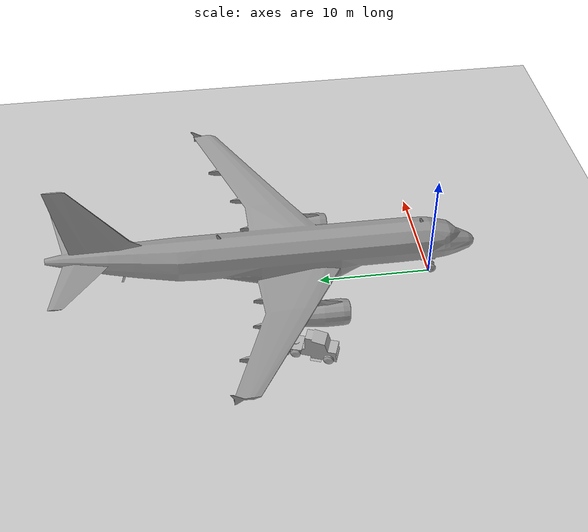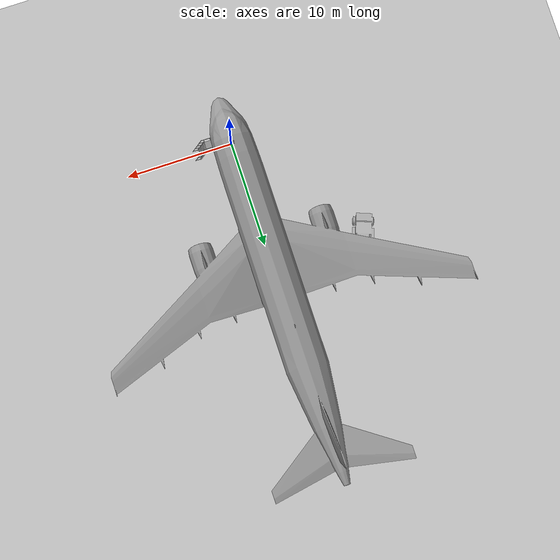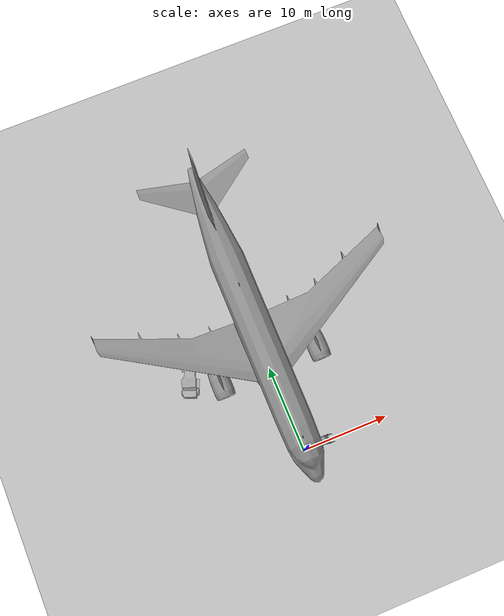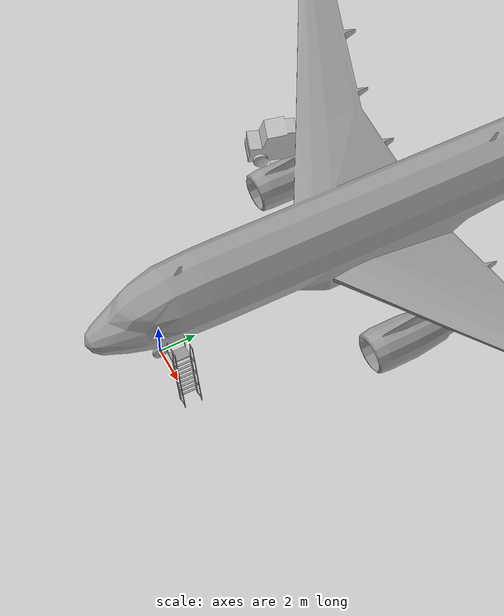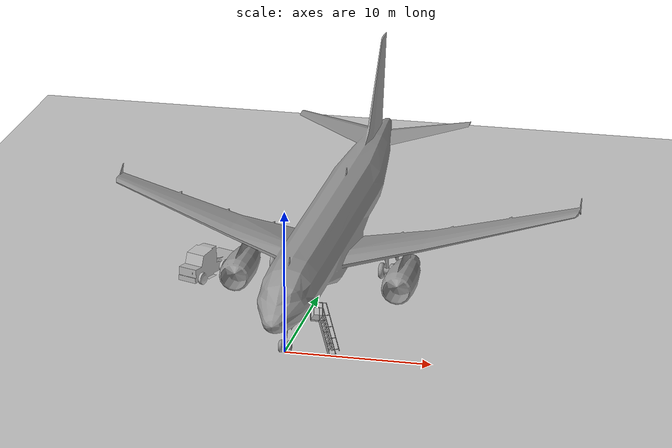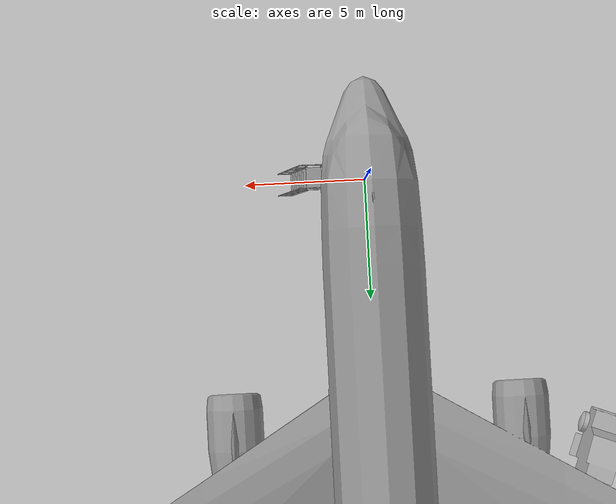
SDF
<sdf version="1.6">
 <world name="default">
  <light name="sun" type="directional">
   <pose>0 0 10 0 -0 0</pose>
   <diffuse>0.8 0.8 0.8 1</diffuse>
   <specular>0.1 0.1 0.1 1</specular>
   <attenuation>
    <range>1000</range>
    <constant>0.9</constant>
    <linear>0.01</linear>
    <quadratic>0.001</quadratic>
   </attenuation>
   <direction>-0.5 0.5 -1</direction>
  </light>
  <model name="ground_plane">
   <static>1</static>
   <link name="link">
    <collision name="collision">
     <geometry><plane><normal>0 0 1</normal><size>100 100</size></plane></geometry>
     <surface><friction><ode><mu>100</mu><mu2>50</mu2></ode></friction></surface>
    </collision>
    <visual name="visual">
     <cast_shadows>0</cast_shadows>
     <geometry><plane><normal>0 0 1</normal><size>100 100</size></plane></geometry>
     <material>
      <script><uri>file://media/materials/scripts/gazebo.material</uri><name>Gazebo/Grey</name></script>
     </material>
    </visual>
   </link>
  </model>
  <gravity>0 0 -9.8</gravity>
  <magnetic_field>6e-06 2.3e-05 -4.2e-05</magnetic_field>
  <atmosphere type="adiabatic"/>
  <physics name="default_physics" default="0" type="ode">
   <max_step_size>0.001</max_step_size>
   <real_time_factor>1</real_time_factor>
   <real_time_update_rate>1000</real_time_update_rate>
  </physics>
  <scene><ambient>0.4 0.4 0.4 1</ambient><background>0.7 0.7 0.7 1</background><shadows>1</shadows></scene>
  <spherical_coordinates>
   <surface_model>EARTH_WGS84</surface_model>
   <latitude_deg>0</latitude_deg>
   <longitude_deg>0</longitude_deg>
   <elevation>0</elevation>
   <heading_deg>0</heading_deg>
  </spherical_coordinates>
  <model name="a320_collapsed">
   <link name="link_3">
    <pose>-4.6e-05 -1e-06 0 0 -0 0</pose>
    <inertial>
     <mass>1</mass>
     <inertia>
      <ixx>0.166667</ixx>
      <ixy>0</ixy>
      <ixz>0</ixz>
      <iyy>0.166667</iyy>
      <iyz>0</iyz>
      <izz>0.166667</izz>
     </inertia>
    </inertial>
    <visual name="visual">
     <geometry><mesh><uri>model://a320_collapsed/a320_collapse.stl</uri><scale>1 1 1</scale></mesh></geometry>
     <material>
      <lighting>1</lighting>
      <script><uri>file://media/materials/scripts/gazebo.material</uri><name>Gazebo/Grey</name></script>
      <ambient>0.3 0.3 0.3 1</ambient>
      <diffuse>0.7 0.7 0.7 1</diffuse>
      <specular>0.01 0.01 0.01 1</specular>
      <emissive>0 0 0 1</emissive>
     </material>
    </visual>
    <collision name="collision">
     <geometry><mesh><uri>model://a320_collapsed/a320_collapse.stl</uri><scale>1 1 1</scale></mesh></geometry>
     <surface>
      <friction>
       <ode><mu>1</mu><mu2>1</mu2><fdir1>0 0 0</fdir1><slip1>0</slip1><slip2>0</slip2></ode>
       <torsional>
        <coefficient>1</coefficient>
        <patch_radius>0</patch_radius>
        <surface_radius>0</surface_radius>
        <use_patch_radius>1</use_patch_radius>
        <ode><slip>0</slip></ode>
       </torsional>
      </friction>
      <bounce><restitution_coefficient>0</restitution_coefficient><threshold>1e+06</threshold></bounce>
      <contact>
       <collide_without_contact>0</collide_without_contact>
       <collide_without_contact_bitmask>1</collide_without_contact_bitmask>
       <collide_bitmask>1</collide_bitmask>
       <ode>
        <soft_cfm>0</soft_cfm>
        <soft_erp>0.2</soft_erp>
        <kp>1e+13</kp>
        <kd>1</kd>
        <max_vel>0.01</max_vel>
        <min_depth>0</min_depth>
       </ode>
       <bullet>
        <split_impulse>1</split_impulse>
        <split_impulse_penetration_threshold>-0.01</split_impulse_penetration_threshold>
        <soft_cfm>0</soft_cfm>
        <soft_erp>0.2</soft_erp>
        <kp>1e+13</kp>
        <kd>1</kd>
       </bullet>
      </contact>
     </surface>
    </collision>
   </link>
   <static>1</static>
   <pose>4.6e-05 1e-06 0 0 -0 0</pose>
  </model>
  <model name="ladder_75deg_2rails">
   <static>1</static>
   <link name="step0">
    <pose>0 0.071453 0.266667 0 -0 0</pose>
    <inertial>
     <mass>9.75482</mass>
     <inertia>
      <ixx>0.00957124</ixx>
      <iyy>0.65963</iyy>
      <izz>0.666842</izz>
      <ixy>0</ixy>
      <ixz>0</ixz>
      <iyz>0</iyz>
     </inertia>
    </inertial>
    <collision name="collision"><geometry><box><size>0.9 0.1016 0.0381</size></box></geometry></collision>
    <visual name="visual">
     <geometry><box><size>0.9 0.1016 0.0381</size></box></geometry>
     <material>
      <script><uri>file://media/materials/scripts/gazebo.material</uri><name>Gazebo/Grey</name></script>
     </material>
    </visual>
   </link>
   <link name="step1">
    <pose>0 0.142906 0.533333 0 -0 0</pose>
    <inertial>
     <mass>9.75482</mass>
     <inertia>
      <ixx>0.00957124</ixx>
      <iyy>0.65963</iyy>
      <izz>0.666842</izz>
      <ixy>0</ixy>
      <ixz>0</ixz>
      <iyz>0</iyz>
     </inertia>
    </inertial>
    <collision name="collision"><geometry><box><size>0.9 0.1016 0.0381</size></box></geometry></collision>
    <visual name="visual">
     <geometry><box><size>0.9 0.1016 0.0381</size></box></geometry>
     <material>
      <script><uri>file://media/materials/scripts/gazebo.material</uri><name>Gazebo/Grey</name></script>
     </material>
    </visual>
   </link>
   <link name="step2">
    <pose>0 0.214359 0.8 0 -0 0</pose>
    <inertial>
     <mass>9.75482</mass>
     <inertia>
      <ixx>0.00957124</ixx>
      <iyy>0.65963</iyy>
      <izz>0.666842</izz>
      <ixy>0</ixy>
      <ixz>0</ixz>
      <iyz>0</iyz>
     </inertia>
    </inertial>
    <collision name="collision"><geometry><box><size>0.9 0.1016 0.0381</size></box></geometry></collision>
    <visual name="visual">
     <geometry><box><size>0.9 0.1016 0.0381</size></box></geometry>
     <material>
      <script><uri>file://media/materials/scripts/gazebo.material</uri><name>Gazebo/Grey</name></script>
     </material>
    </visual>
   </link>
   <link name="step3">
    <pose>0 0.285812 1.06667 0 -0 0</pose>
    <inertial>
     <mass>9.75482</mass>
     <inertia>
      <ixx>0.00957124</ixx>
      <iyy>0.65963</iyy>
      <izz>0.666842</izz>
      <ixy>0</ixy>
      <ixz>0</ixz>
      <iyz>0</iyz>
     </inertia>
    </inertial>
    <collision name="collision"><geometry><box><size>0.9 0.1016 0.0381</size></box></geometry></collision>
    <visual name="visual">
     <geometry><box><size>0.9 0.1016 0.0381</size></box></geometry>
     <material>
      <script><uri>file://media/materials/scripts/gazebo.material</uri><name>Gazebo/Grey</name></script>
     </material>
    </visual>
   </link>
   <link name="step4">
    <pose>0 0.357266 1.33333 0 -0 0</pose>
    <inertial>
     <mass>9.75482</mass>
     <inertia>
      <ixx>0.00957124</ixx>
      <iyy>0.65963</iyy>
      <izz>0.666842</izz>
      <ixy>0</ixy>
      <ixz>0</ixz>
      <iyz>0</iyz>
     </inertia>
    </inertial>
    <collision name="collision"><geometry><box><size>0.9 0.1016 0.0381</size></box></geometry></collision>
    <visual name="visual">
     <geometry><box><size>0.9 0.1016 0.0381</size></box></geometry>
     <material>
      <script><uri>file://media/materials/scripts/gazebo.material</uri><name>Gazebo/Grey</name></script>
     </material>
    </visual>
   </link>
   <link name="step5">
    <pose>0 0.428719 1.6 0 -0 0</pose>
    <inertial>
     <mass>9.75482</mass>
     <inertia>
      <ixx>0.00957124</ixx>
      <iyy>0.65963</iyy>
      <izz>0.666842</izz>
      <ixy>0</ixy>
      <ixz>0</ixz>
      <iyz>0</iyz>
     </inertia>
    </inertial>
    <collision name="collision"><geometry><box><size>0.9 0.1016 0.0381</size></box></geometry></collision>
    <visual name="visual">
     <geometry><box><size>0.9 0.1016 0.0381</size></box></geometry>
     <material>
      <script><uri>file://media/materials/scripts/gazebo.material</uri><name>Gazebo/Grey</name></script>
     </material>
    </visual>
   </link>
   <link name="step6">
    <pose>0 0.500172 1.86667 0 -0 0</pose>
    <inertial>
     <mass>9.75482</mass>
     <inertia>
      <ixx>0.00957124</ixx>
      <iyy>0.65963</iyy>
      <izz>0.666842</izz>
      <ixy>0</ixy>
      <ixz>0</ixz>
      <iyz>0</iyz>
     </inertia>
    </inertial>
    <collision name="collision"><geometry><box><size>0.9 0.1016 0.0381</size></box></geometry></collision>
    <visual name="visual">
     <geometry><box><size>0.9 0.1016 0.0381</size></box></geometry>
     <material>
      <script><uri>file://media/materials/scripts/gazebo.material</uri><name>Gazebo/Grey</name></script>
     </material>
    </visual>
   </link>
   <link name="step7">
    <pose>0 0.571625 2.13333 0 -0 0</pose>
    <inertial>
     <mass>9.75482</mass>
     <inertia>
      <ixx>0.00957124</ixx>
      <iyy>0.65963</iyy>
      <izz>0.666842</izz>
      <ixy>0</ixy>
      <ixz>0</ixz>
      <iyz>0</iyz>
     </inertia>
    </inertial>
    <collision name="collision"><geometry><box><size>0.9 0.1016 0.0381</size></box></geometry></collision>
    <visual name="visual">
     <geometry><box><size>0.9 0.1016 0.0381</size></box></geometry>
     <material>
      <script><uri>file://media/materials/scripts/gazebo.material</uri><name>Gazebo/Grey</name></script>
     </material>
    </visual>
   </link>
   <link name="landing">
    <pose>0 0.943078 2.4 0 -0 0</pose>
    <inertial>
     <mass>57.6072</mass>
     <inertia><ixx>1.73518</ixx><iyy>3.89545</iyy><izz>5.6167</izz><ixy>0</ixy><ixz>0</ixz><iyz>0</iyz></inertia>
    </inertial>
    <collision name="collision"><geometry><box><size>0.9 0.6 0.1016</size></box></geometry></collision>
    <visual name="visual">
     <geometry><box><size>0.9 0.6 0.1016</size></box></geometry>
     <material>
      <script><uri>file://media/materials/scripts/gazebo.material</uri><name>Gazebo/Grey</name></script>
     </material>
    </visual>
   </link>
   <link name="left_side_wall">
    <pose>-0.45 0.321539 1.2 1.309 -0 0</pose>
    <collision name="collision"><geometry><box><size>0.0508 2.56466 0.13</size></box></geometry></collision>
    <visual name="visual">
     <geometry><box><size>0.0508 2.56466 0.13</size></box></geometry>
     <material>
      <script><uri>file://media/materials/scripts/gazebo.material</uri><name>Gazebo/Grey</name></script>
     </material>
    </visual>
   </link>
   <link name="right_side_wall">
    <pose>0.45 0.321539 1.2 1.309 -0 0</pose>
    <collision name="collision"><geometry><box><size>0.0508 2.56466 0.13</size></box></geometry></collision>
    <visual name="visual">
     <geometry><box><size>0.0508 2.56466 0.13</size></box></geometry>
     <material>
      <script><uri>file://media/materials/scripts/gazebo.material</uri><name>Gazebo/Grey</name></script>
     </material>
    </visual>
   </link>
   <link name="left_railing_long">
    <pose>-0.45 -0.053461 1.66651 -0.261799 0 0</pose>
    <collision name="collision">
     <geometry><cylinder><radius>0.02413</radius><length>3.51529</length></cylinder></geometry>
    </collision>
    <visual name="visual">
     <geometry><cylinder><radius>0.02413</radius><length>3.51529</length></cylinder></geometry>
     <material>
      <script><uri>file://media/materials/scripts/gazebo.material</uri><name>Gazebo/Grey</name></script>
     </material>
    </visual>
   </link>
   <link name="left_railing_upright0">
    <pose>-0.45 -0.210089 0.056293 1.309 -0 0</pose>
    <collision name="collision">
     <geometry><cylinder><radius>0.02413</radius><length>0.482963</length></cylinder></geometry>
    </collision>
    <visual name="visual">
     <geometry><cylinder><radius>0.02413</radius><length>0.482963</length></cylinder></geometry>
     <material>
      <script><uri>file://media/materials/scripts/gazebo.material</uri><name>Gazebo/Grey</name></script>
     </material>
    </visual>
   </link>
   <link name="left_railing_upright1">
    <pose>-0.45 0.00427 0.856293 1.309 -0 0</pose>
    <collision name="collision">
     <geometry><cylinder><radius>0.02413</radius><length>0.482963</length></cylinder></geometry>
    </collision>
    <visual name="visual">
     <geometry><cylinder><radius>0.02413</radius><length>0.482963</length></cylinder></geometry>
     <material>
      <script><uri>file://media/materials/scripts/gazebo.material</uri><name>Gazebo/Grey</name></script>
     </material>
    </visual>
   </link>
   <link name="left_railing_upright2">
    <pose>-0.45 0.21863 1.65629 1.309 -0 0</pose>
    <collision name="collision">
     <geometry><cylinder><radius>0.02413</radius><length>0.482963</length></cylinder></geometry>
    </collision>
    <visual name="visual">
     <geometry><cylinder><radius>0.02413</radius><length>0.482963</length></cylinder></geometry>
     <material>
      <script><uri>file://media/materials/scripts/gazebo.material</uri><name>Gazebo/Grey</name></script>
     </material>
    </visual>
   </link>
   <link name="left_railing_upright3">
    <pose>-0.45 0.432989 2.45629 1.309 -0 0</pose>
    <collision name="collision">
     <geometry><cylinder><radius>0.02413</radius><length>0.482963</length></cylinder></geometry>
    </collision>
    <visual name="visual">
     <geometry><cylinder><radius>0.02413</radius><length>0.482963</length></cylinder></geometry>
     <material>
      <script><uri>file://media/materials/scripts/gazebo.material</uri><name>Gazebo/Grey</name></script>
     </material>
    </visual>
   </link>
   <link name="left_railing_landing_top">
    <pose>-0.45 0.818078 3.35714 1.5708 -0 0</pose>
    <collision name="collision">
     <geometry><cylinder><radius>0.02413</radius><length>0.87413</length></cylinder></geometry>
    </collision>
    <visual name="visual">
     <geometry><cylinder><radius>0.02413</radius><length>0.87413</length></cylinder></geometry>
     <material>
      <script><uri>file://media/materials/scripts/gazebo.material</uri><name>Gazebo/Grey</name></script>
     </material>
    </visual>
   </link>
   <link name="left_railing_landing_upright_0">
    <pose>-0.45 0.643078 2.86651 0 -0 0</pose>
    <collision name="collision">
     <geometry><cylinder><radius>0.02413</radius><length>0.933013</length></cylinder></geometry>
    </collision>
    <visual name="visual">
     <geometry><cylinder><radius>0.02413</radius><length>0.933013</length></cylinder></geometry>
     <material>
      <script><uri>file://media/materials/scripts/gazebo.material</uri><name>Gazebo/Grey</name></script>
     </material>
    </visual>
   </link>
   <link name="left_railing_landing_upright_1">
    <pose>-0.45 1.24308 2.86651 0 -0 0</pose>
    <collision name="collision">
     <geometry><cylinder><radius>0.02413</radius><length>0.933013</length></cylinder></geometry>
    </collision>
    <visual name="visual">
     <geometry><cylinder><radius>0.02413</radius><length>0.933013</length></cylinder></geometry>
     <material>
      <script><uri>file://media/materials/scripts/gazebo.material</uri><name>Gazebo/Grey</name></script>
     </material>
    </visual>
   </link>
   <link name="right_railing_long">
    <pose>0.45 -0.053461 1.66651 -0.261799 0 0</pose>
    <collision name="collision">
     <geometry><cylinder><radius>0.02413</radius><length>3.51529</length></cylinder></geometry>
    </collision>
    <visual name="visual">
     <geometry><cylinder><radius>0.02413</radius><length>3.51529</length></cylinder></geometry>
     <material>
      <script><uri>file://media/materials/scripts/gazebo.material</uri><name>Gazebo/Grey</name></script>
     </material>
    </visual>
   </link>
   <link name="right_railing_upright0">
    <pose>0.45 -0.210089 0.056293 1.309 -0 0</pose>
    <collision name="collision">
     <geometry><cylinder><radius>0.02413</radius><length>0.482963</length></cylinder></geometry>
    </collision>
    <visual name="visual">
     <geometry><cylinder><radius>0.02413</radius><length>0.482963</length></cylinder></geometry>
     <material>
      <script><uri>file://media/materials/scripts/gazebo.material</uri><name>Gazebo/Grey</name></script>
     </material>
    </visual>
   </link>
   <link name="right_railing_upright1">
    <pose>0.45 0.00427 0.856293 1.309 -0 0</pose>
    <collision name="collision">
     <geometry><cylinder><radius>0.02413</radius><length>0.482963</length></cylinder></geometry>
    </collision>
    <visual name="visual">
     <geometry><cylinder><radius>0.02413</radius><length>0.482963</length></cylinder></geometry>
     <material>
      <script><uri>file://media/materials/scripts/gazebo.material</uri><name>Gazebo/Grey</name></script>
     </material>
    </visual>
   </link>
   <link name="right_railing_upright2">
    <pose>0.45 0.21863 1.65629 1.309 -0 0</pose>
    <collision name="collision">
     <geometry><cylinder><radius>0.02413</radius><length>0.482963</length></cylinder></geometry>
    </collision>
    <visual name="visual">
     <geometry><cylinder><radius>0.02413</radius><length>0.482963</length></cylinder></geometry>
     <material>
      <script><uri>file://media/materials/scripts/gazebo.material</uri><name>Gazebo/Grey</name></script>
     </material>
    </visual>
   </link>
   <link name="right_railing_upright3">
    <pose>0.45 0.432989 2.45629 1.309 -0 0</pose>
    <collision name="collision">
     <geometry><cylinder><radius>0.02413</radius><length>0.482963</length></cylinder></geometry>
    </collision>
    <visual name="visual">
     <geometry><cylinder><radius>0.02413</radius><length>0.482963</length></cylinder></geometry>
     <material>
      <script><uri>file://media/materials/scripts/gazebo.material</uri><name>Gazebo/Grey</name></script>
     </material>
    </visual>
   </link>
   <link name="right_railing_landing_top">
    <pose>0.45 0.818078 3.35714 1.5708 -0 0</pose>
    <collision name="collision">
     <geometry><cylinder><radius>0.02413</radius><length>0.87413</length></cylinder></geometry>
    </collision>
    <visual name="visual">
     <geometry><cylinder><radius>0.02413</radius><length>0.87413</length></cylinder></geometry>
     <material>
      <script><uri>file://media/materials/scripts/gazebo.material</uri><name>Gazebo/Grey</name></script>
     </material>
    </visual>
   </link>
   <link name="right_railing_landing_upright_0">
    <pose>0.45 0.643078 2.86651 0 -0 0</pose>
    <collision name="collision">
     <geometry><cylinder><radius>0.02413</radius><length>0.933013</length></cylinder></geometry>
    </collision>
    <visual name="visual">
     <geometry><cylinder><radius>0.02413</radius><length>0.933013</length></cylinder></geometry>
     <material>
      <script><uri>file://media/materials/scripts/gazebo.material</uri><name>Gazebo/Grey</name></script>
     </material>
    </visual>
   </link>
   <link name="right_railing_landing_upright_1">
    <pose>0.45 1.24308 2.86651 0 -0 0</pose>
    <collision name="collision">
     <geometry><cylinder><radius>0.02413</radius><length>0.933013</length></cylinder></geometry>
    </collision>
    <visual name="visual">
     <geometry><cylinder><radius>0.02413</radius><length>0.933013</length></cylinder></geometry>
     <material>
      <script><uri>file://media/materials/scripts/gazebo.material</uri><name>Gazebo/Grey</name></script>
     </material>
    </visual>
   </link>
   <pose>3.10896 0.061934 0.221802 0 -0 1.5566</pose>
  </model>
  <model name="fuel_truck_chassis">
   <static>1</static>
   <link name="link">
    <collision name="collision">
     <pose>0 0 0 0 0 -3.14</pose>
     <geometry><mesh><scale>1 1 1</scale><uri>model://fuel_truck_chassis/meshes/chassis.stl</uri></mesh></geometry>
    </collision>
    <visual name="visual">
     <pose>0 0 0 0 0 -3.14</pose>
     <geometry><mesh><scale>1 1 1</scale><uri>model://fuel_truck_chassis/meshes/chassis.stl</uri></mesh></geometry>
    </visual>
   </link>
   <pose>-8.8866 12.6192 0 0 -0 1.19869</pose>
   <plugin name="animated_chassis" filename="libanimated_chassis.so"/>
  </model>
 </world>
</sdf>
